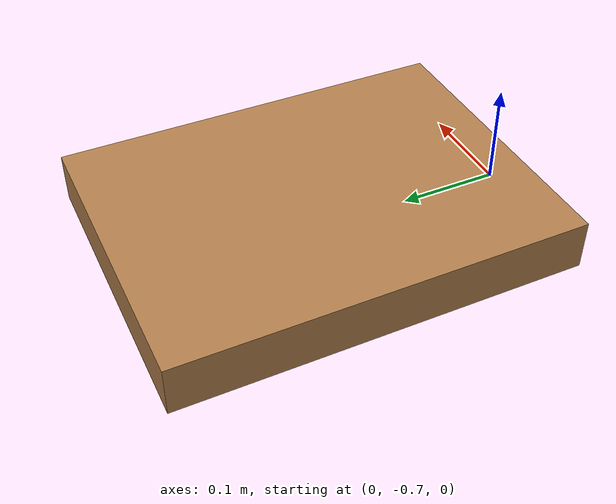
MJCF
<mujoco>
    <compiler angle="degree"/>

    <asset>
        <texture type="skybox" builtin="gradient" rgb1="1 1 1" rgb2=".6 .8 1" width="256" height="256"/>
        <texture name="texplane" type="2d" builtin="checker" rgb1=".2 .3 .4" rgb2=".1 0.15 0.2" width="512" height="512" mark="cross" markrgb=".8 .8 .8"/>

        <material name="matplane" reflectance="0" texture="texplane" texrepeat="2 2" texuniform="true"/>
        <material name="wall_mat" rgba="0.7 0.5 0.3 1"/>
        <material name="shadow_init" rgba="0.1 0.9 0.1 0.1"/>
        <material name="top_mat" rgba="0.7 0.5 0.3 0.5"/>
        <material name="hole_mat" rgba="0.1 0.3 0.9 0.8"/>

    </asset>

    <worldbody>

        <geom name="obstacle" type="box" pos="0 -0.5 0.025" size="0.15 0.2 0.025" material="wall_mat"/>
        <site name="obstacle_reach" pos="0 -0.3 0.01" size="0.01" rgba="1 0 0 0"/>

    </worldbody>

    <option timestep="0.002" o_solimp="0.9 0.95 0.001 0.1 2" o_solref="0.008 2" cone="elliptic"
        impratio="3.0" noslip_iterations="5" noslip_tolerance="1e-8">
        <flag override="enable"/>
    </option>

</mujoco>
